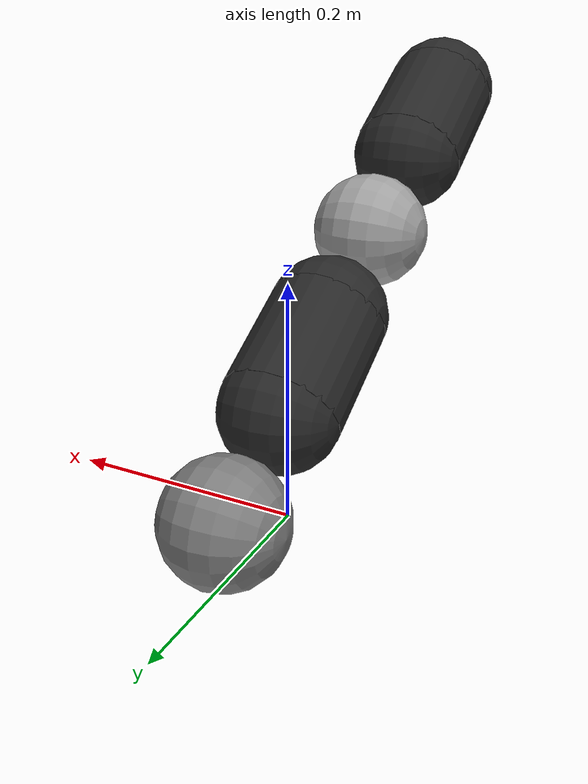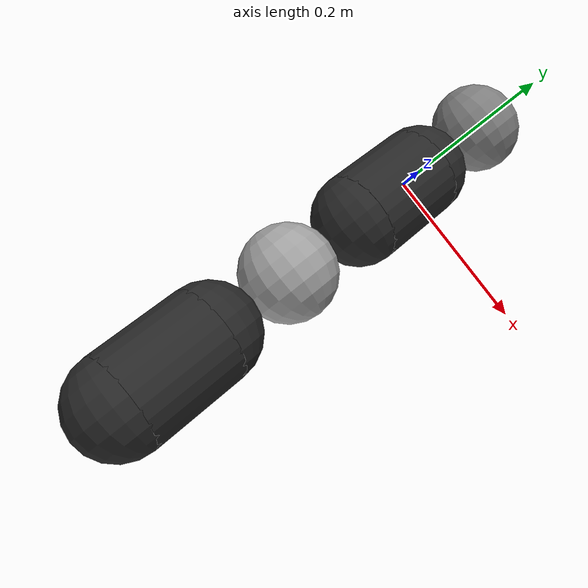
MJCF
<mujoco model="robot_right">
  <compiler eulerseq="XYZ" autolimits="true" />

  <default>
    <default class="right_arm" />
  </default>
  <asset>
    <material name="ra_material_1" class="right_arm" emission="0" specular="0"
      rgba="0.16 0.16 0.16 1" />
    <material name="ra_material_2" class="right_arm" emission="0" specular="0"
      rgba="0.16 0.16 0.16 1" />
    <material name="ra_material_3" class="right_arm" emission="0" specular="0"
      rgba="0.64 0.64 0.64 1" />
    <material name="ra_material_4" class="right_arm" emission="0" specular="0"
      rgba="0.16 0.16 0.16 1" />
    <material name="ra_material_5" class="right_arm" emission="0" specular="0"
      rgba="0.16 0.16 0.16 1" />
    <material name="ra_material_6" class="right_arm" emission="0" specular="0"
      rgba="0.16 0.16 0.16 1" />
    <material name="ra_material_7" class="right_arm" emission="0" specular="0"
      rgba="0.16 0.16 0.16 1" />
  </asset>
  <worldbody>
    <body name="ra_0" pos="0 0.1 0.05" euler="90 -60 90">
      <inertial pos="0 0 0" mass="1" fullinertia="0.003 0.003 0.003 0 0 0" />
      <geom name="ra_collision" class="right_arm" type="sphere" group="3"
        size="0.05" pos="0 0 0" euler="0 -0 0" />
      <geom name="ra_ball" class="right_arm" type="sphere" group="0" size="0.05" pos="0 0 0"
        euler="0 -0 0" />
      <body name="ra_1" pos="0 0 0" euler="0 -0 0">
        <inertial pos="0 0 0" mass="0.1" fullinertia="0.003 0.003 0.003 0 0 0" />
        <geom name="ra_collision_0" class="right_arm" type="sphere" group="3"
          size="0.05" pos="0 0.10 0" euler="0 -0 0" />
        <geom name="ra_collision_1" class="right_arm" type="sphere" group="3"
          size="0.05" pos="0 0.20 0" euler="0 -0 0" />
        <geom name="ra_collision_2" class="right_arm" type="sphere" group="3"
          size="0.05" pos="0 0.30 0" euler="0 -0 0" />
        <geom name="ra_ball0" class="right_arm" type="sphere" group="0" size="0.05"
          material="ra_material_1" pos="0 0.10 0" euler="0 -0 0" />
        <geom name="ra_ball1" class="right_arm" type="sphere" group="0" size="0.05"
          material="ra_material_2" pos="0 0.20 0" euler="0 -0 0" />
        <geom name="ra_ball2" class="right_arm" type="sphere" group="0" size="0.05"
          material="ra_material_3" pos="0 0.30 0" euler="0 -0 0" />
        <geom name="ra_cylinder" class="right_arm" type="cylinder" group="0"
          size="0.05 0.05" material="ra_material_4"
          pos="0 0.150 0" euler="90 -0 0" />
        <joint name="robot:ra_joint_1" class="right_arm" type="hinge" pos="0 0 0" axis="1 0 0"
          limited="true" range="0 90" damping="0.50" />
        <body name="ra_2" pos="0 0.30 0" euler="0 -0 0">
          <inertial pos="0 0 0" mass="0.01" fullinertia="0.003 0.003 0.003 0 0 0" />
          <geom name="ra_collision_0_0" class="right_arm" type="sphere" group="3"
            size="0.05" pos="0 0.10 0" euler="0 -0 0" />
          <geom name="ra_collision_1_0" class="right_arm" type="sphere" group="3"
            size="0.05" pos="0 0.20 0" euler="0 -0 0" />
          <geom name="ra_ball0_0" class="right_arm" type="sphere" group="0"
            size="0.05" material="ra_material_5" pos="0 0.10 0"
            euler="0 -0 0" />
          <geom name="ra_ball1_0" class="right_arm" type="sphere" group="0"
            size="0.05" material="ra_material_6" pos="0 0.20 0"
            euler="0 -0 0" />
          <geom name="ra_cylinder_0" class="right_arm" type="cylinder" group="0"
            size="0.05 0.05" material="ra_material_7"
            pos="0 0.15 0" euler="90 -0 0" />
          <joint name="robot:ra_joint_2" class="right_arm" type="hinge" pos="0 0 0" axis="1 0 0"
            limited="true" range="0 137.50987083139756" damping="0.50" />
          <site name="rf_site_tip" pos="0 0 0.0" />
        </body>
      </body>
    </body>
  </worldbody>

  <actuator>
    <position class="right_arm" name="robot:ra_actuator_1" joint="robot:ra_joint_1" kp="10"
      ctrlrange="0 2.1" />
    <position class="right_arm" name="robot:ra_actuator_2" joint="robot:ra_joint_2" kp="5"
      ctrlrange="0 2.1" />
  </actuator>
</mujoco>
